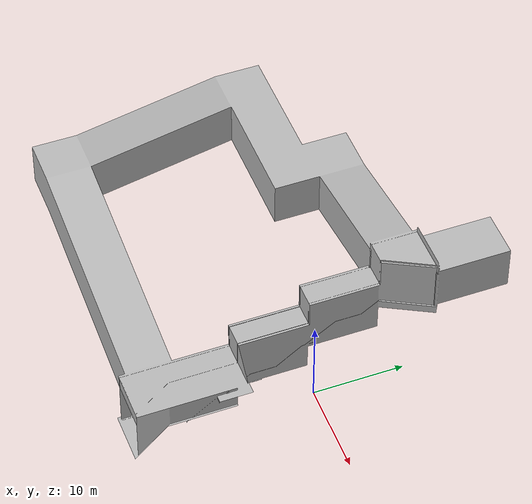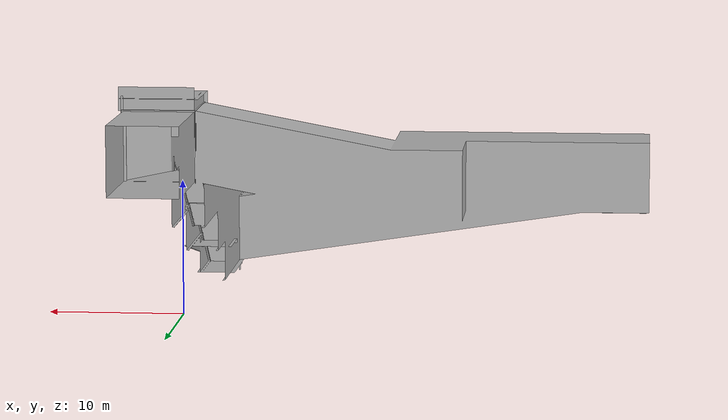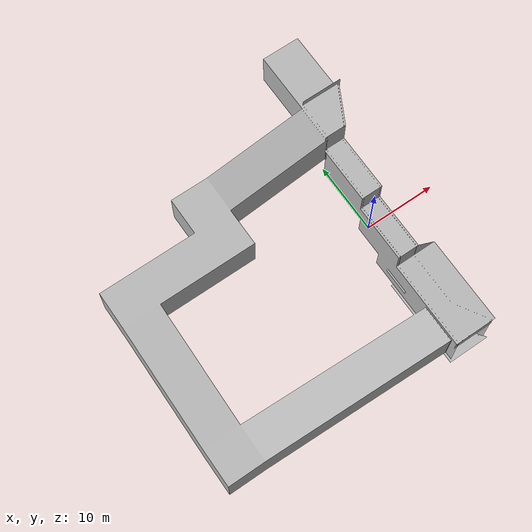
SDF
<?xml version="1.0" ?>
<sdf version="1.6">
  <model name="Urban Stairwell Platform">
      <pose>0 0 0 0 0 0</pose>
      <static>true</static>
      <link name="link">
        <collision name="collision">
          <geometry>
            <mesh>
              <uri>model://Urban Stairwell Platform/meshes/stairwell_platform.dae</uri>
            </mesh>
          </geometry>
        </collision>
        <visual name="visual">
          <geometry>
            <mesh>
              <uri>model://Urban Stairwell Platform/meshes/stairwell_platform.dae</uri>
            </mesh>
          </geometry>
        </visual>
      </link>
    </model>
   </sdf>
